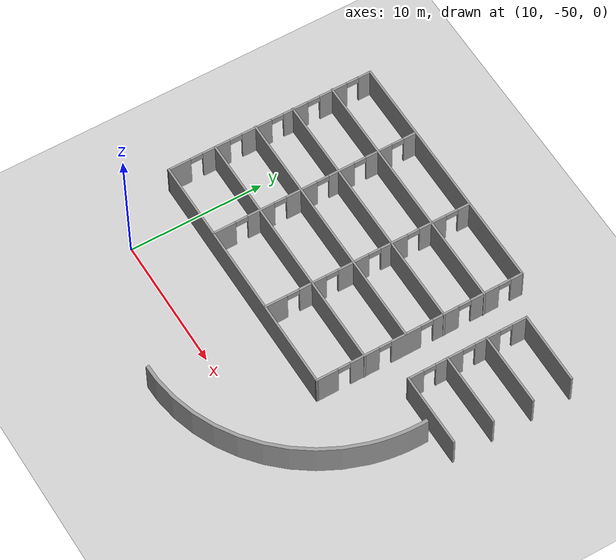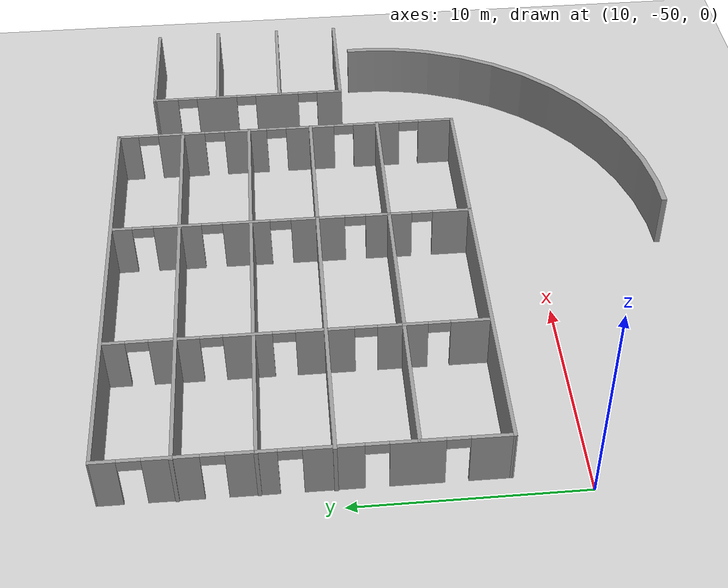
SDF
<sdf version="1.6">
 <world name="default">
  <model name="ground_plane">
   <static>1</static>
   <link name="link">
    <collision name="collision">
     <geometry><plane><normal>0 0 1</normal><size>100 100</size></plane></geometry>
     <surface>
      <contact><collide_bitmask>65535</collide_bitmask></contact>
      <friction><ode><mu>100</mu><mu2>50</mu2></ode></friction>
     </surface>
    </collision>
    <visual name="visual">
     <cast_shadows>0</cast_shadows>
     <geometry><plane><normal>0 0 1</normal><size>100 100</size></plane></geometry>
     <material>
      <script><uri>file://media/materials/scripts/gazebo.material</uri><name>Gazebo/Grey</name></script>
     </material>
    </visual>
   </link>
  </model>
  <model name="5x3_Cubicles_1">
   <pose>18.3518 -38.5604 2.72806 0 -0 0</pose>
   <link name="Wall_0">
    <pose>-9.39351 -0 0 0 -0 -1.57435</pose>
    <visual name="Wall_0_Visual_0">
     <pose>-7.27295 0 1.25 0 -0 0</pose>
     <geometry><box><size>1.03181 0.15 2.5</size></box></geometry>
     <material>
      <script><uri>file://media/materials/scripts/gazebo.material</uri><name>Gazebo/Grey</name></script>
      <ambient>1 1 1 1</ambient>
     </material>
     <meta><layer>0</layer></meta>
    </visual>
    <collision name="Wall_0_Collision_0">
     <geometry><box><size>1.03181 0.15 2.5</size></box></geometry>
     <pose>-7.27295 0 1.25 0 -0 0</pose>
    </collision>
    <visual name="Wall_0_Visual_1">
     <pose>-4.8086 0 1.25 0 -0 0</pose>
     <geometry><box><size>2.09689 0.15 2.5</size></box></geometry>
     <material>
      <script><uri>file://media/materials/scripts/gazebo.material</uri><name>Gazebo/Grey</name></script>
      <ambient>1 1 1 1</ambient>
     </material>
     <meta><layer>0</layer></meta>
    </visual>
    <collision name="Wall_0_Collision_1">
     <geometry><box><size>2.09689 0.15 2.5</size></box></geometry>
     <pose>-4.8086 0 1.25 0 -0 0</pose>
    </collision>
    <visual name="Wall_0_Visual_2">
     <pose>-1.91379 0 1.25 0 -0 0</pose>
     <geometry><box><size>1.89272 0.15 2.5</size></box></geometry>
     <material>
      <script><uri>file://media/materials/scripts/gazebo.material</uri><name>Gazebo/Grey</name></script>
      <ambient>1 1 1 1</ambient>
     </material>
     <meta><layer>0</layer></meta>
    </visual>
    <collision name="Wall_0_Collision_2">
     <geometry><box><size>1.89272 0.15 2.5</size></box></geometry>
     <pose>-1.91379 0 1.25 0 -0 0</pose>
    </collision>
    <visual name="Wall_0_Visual_3">
     <pose>1.06918 0 1.25 0 -0 0</pose>
     <geometry><box><size>2.27323 0.15 2.5</size></box></geometry>
     <material>
      <script><uri>file://media/materials/scripts/gazebo.material</uri><name>Gazebo/Grey</name></script>
      <ambient>1 1 1 1</ambient>
     </material>
     <meta><layer>0</layer></meta>
    </visual>
    <collision name="Wall_0_Collision_3">
     <geometry><box><size>2.27323 0.15 2.5</size></box></geometry>
     <pose>1.06918 0 1.25 0 -0 0</pose>
    </collision>
    <visual name="Wall_0_Visual_4">
     <pose>4.14705 0 1.25 0 -0 0</pose>
     <geometry><box><size>2.0825 0.15 2.5</size></box></geometry>
     <material>
      <script><uri>file://media/materials/scripts/gazebo.material</uri><name>Gazebo/Grey</name></script>
      <ambient>1 1 1 1</ambient>
     </material>
     <meta><layer>0</layer></meta>
    </visual>
    <collision name="Wall_0_Collision_4">
     <geometry><box><size>2.0825 0.15 2.5</size></box></geometry>
     <pose>4.14705 0 1.25 0 -0 0</pose>
    </collision>
    <visual name="Wall_0_Visual_5">
     <pose>6.93858 0 1.25 0 -0 0</pose>
     <geometry><box><size>1.70057 0.15 2.5</size></box></geometry>
     <material>
      <script><uri>file://media/materials/scripts/gazebo.material</uri><name>Gazebo/Grey</name></script>
      <ambient>1 1 1 1</ambient>
     </material>
     <meta><layer>0</layer></meta>
    </visual>
    <collision name="Wall_0_Collision_5">
     <geometry><box><size>1.70057 0.15 2.5</size></box></geometry>
     <pose>6.93858 0 1.25 0 -0 0</pose>
    </collision>
    <visual name="Wall_0_Visual_6">
     <pose>-6.30705 0 2.25 0 -0 0</pose>
     <geometry><box><size>0.9 0.15 0.5</size></box></geometry>
     <material>
      <script><uri>file://media/materials/scripts/gazebo.material</uri><name>Gazebo/Grey</name></script>
      <ambient>1 1 1 1</ambient>
     </material>
     <meta><layer>0</layer></meta>
    </visual>
    <collision name="Wall_0_Collision_6">
     <geometry><box><size>0.9 0.15 0.5</size></box></geometry>
     <pose>-6.30705 0 2.25 0 -0 0</pose>
    </collision>
    <visual name="Wall_0_Visual_7">
     <pose>-3.31016 0 2.25 0 -0 0</pose>
     <geometry><box><size>0.9 0.15 0.5</size></box></geometry>
     <material>
      <script><uri>file://media/materials/scripts/gazebo.material</uri><name>Gazebo/Grey</name></script>
      <ambient>1 1 1 1</ambient>
     </material>
     <meta><layer>0</layer></meta>
    </visual>
    <collision name="Wall_0_Collision_7">
     <geometry><box><size>0.9 0.15 0.5</size></box></geometry>
     <pose>-3.31016 0 2.25 0 -0 0</pose>
    </collision>
    <visual name="Wall_0_Visual_8">
     <pose>-0.517433 0 2.25 0 -0 0</pose>
     <geometry><box><size>0.9 0.15 0.5</size></box></geometry>
     <material>
      <script><uri>file://media/materials/scripts/gazebo.material</uri><name>Gazebo/Grey</name></script>
      <ambient>1 1 1 1</ambient>
     </material>
     <meta><layer>0</layer></meta>
    </visual>
    <collision name="Wall_0_Collision_8">
     <geometry><box><size>0.9 0.15 0.5</size></box></geometry>
     <pose>-0.517433 0 2.25 0 -0 0</pose>
    </collision>
    <visual name="Wall_0_Visual_9">
     <pose>2.6558 0 2.25 0 -0 0</pose>
     <geometry><box><size>0.9 0.15 0.5</size></box></geometry>
     <material>
      <script><uri>file://media/materials/scripts/gazebo.material</uri><name>Gazebo/Grey</name></script>
      <ambient>1 1 1 1</ambient>
     </material>
     <meta><layer>0</layer></meta>
    </visual>
    <collision name="Wall_0_Collision_9">
     <geometry><box><size>0.9 0.15 0.5</size></box></geometry>
     <pose>2.6558 0 2.25 0 -0 0</pose>
    </collision>
    <visual name="Wall_0_Visual_10">
     <pose>5.63829 0 2.25 0 -0 0</pose>
     <geometry><box><size>0.9 0.15 0.5</size></box></geometry>
     <material>
      <script><uri>file://media/materials/scripts/gazebo.material</uri><name>Gazebo/Grey</name></script>
      <ambient>1 1 1 1</ambient>
     </material>
     <meta><layer>0</layer></meta>
    </visual>
    <collision name="Wall_0_Collision_10">
     <geometry><box><size>0.9 0.15 0.5</size></box></geometry>
     <pose>5.63829 0 2.25 0 -0 0</pose>
    </collision>
   </link>
   <link name="Wall_10">
    <collision name="Wall_10_Collision">
     <geometry><box><size>19 0.15 2.5</size></box></geometry>
     <pose>0 0 1.25 0 -0 0</pose>
    </collision>
    <visual name="Wall_10_Visual">
     <pose>0 0 1.25 0 -0 0</pose>
     <geometry><box><size>19 0.15 2.5</size></box></geometry>
     <material>
      <script><uri>file://media/materials/scripts/gazebo.material</uri><name>Gazebo/Grey</name></script>
      <ambient>1 1 1 1</ambient>
     </material>
     <meta><layer>0</layer></meta>
    </visual>
    <pose>-0 1.73972 0 0 -0 0</pose>
   </link>
   <link name="Wall_12">
    <collision name="Wall_12_Collision">
     <geometry><box><size>19 0.15 2.5</size></box></geometry>
     <pose>0 0 1.25 0 -0 0</pose>
    </collision>
    <visual name="Wall_12_Visual">
     <pose>0 0 1.25 0 -0 0</pose>
     <geometry><box><size>19 0.15 2.5</size></box></geometry>
     <material>
      <script><uri>file://media/materials/scripts/gazebo.material</uri><name>Gazebo/Grey</name></script>
      <ambient>1 1 1 1</ambient>
     </material>
     <meta><layer>0</layer></meta>
    </visual>
    <pose>0.002757 4.78648 0 0 -0 0</pose>
   </link>
   <link name="Wall_14">
    <pose>3.03244 -0.038205 0 0 -0 -1.57332</pose>
    <visual name="Wall_14_Visual_0">
     <pose>-7.27661 0 1.25 0 -0 0</pose>
     <geometry><box><size>0.887786 0.15 2.5</size></box></geometry>
     <material>
      <script><uri>file://media/materials/scripts/gazebo.material</uri><name>Gazebo/Grey</name></script>
      <ambient>1 1 1 1</ambient>
     </material>
     <meta><layer>0</layer></meta>
    </visual>
    <collision name="Wall_14_Collision_0">
     <geometry><box><size>0.887786 0.15 2.5</size></box></geometry>
     <pose>-7.27661 0 1.25 0 -0 0</pose>
    </collision>
    <visual name="Wall_14_Visual_1">
     <pose>-4.91212 0 1.25 0 -0 0</pose>
     <geometry><box><size>2.04118 0.15 2.5</size></box></geometry>
     <material>
      <script><uri>file://media/materials/scripts/gazebo.material</uri><name>Gazebo/Grey</name></script>
      <ambient>1 1 1 1</ambient>
     </material>
     <meta><layer>0</layer></meta>
    </visual>
    <collision name="Wall_14_Collision_1">
     <geometry><box><size>2.04118 0.15 2.5</size></box></geometry>
     <pose>-4.91212 0 1.25 0 -0 0</pose>
    </collision>
    <visual name="Wall_14_Visual_2">
     <pose>-1.97726 0 1.25 0 -0 0</pose>
     <geometry><box><size>2.02854 0.15 2.5</size></box></geometry>
     <material>
      <script><uri>file://media/materials/scripts/gazebo.material</uri><name>Gazebo/Grey</name></script>
      <ambient>1 1 1 1</ambient>
     </material>
     <meta><layer>0</layer></meta>
    </visual>
    <collision name="Wall_14_Collision_2">
     <geometry><box><size>2.02854 0.15 2.5</size></box></geometry>
     <pose>-1.97726 0 1.25 0 -0 0</pose>
    </collision>
    <visual name="Wall_14_Visual_3">
     <pose>1.09454 0 1.25 0 -0 0</pose>
     <geometry><box><size>2.31505 0.15 2.5</size></box></geometry>
     <material>
      <script><uri>file://media/materials/scripts/gazebo.material</uri><name>Gazebo/Grey</name></script>
      <ambient>1 1 1 1</ambient>
     </material>
     <meta><layer>0</layer></meta>
    </visual>
    <collision name="Wall_14_Collision_3">
     <geometry><box><size>2.31505 0.15 2.5</size></box></geometry>
     <pose>1.09454 0 1.25 0 -0 0</pose>
    </collision>
    <visual name="Wall_14_Visual_4">
     <pose>4.15071 0 1.25 0 -0 0</pose>
     <geometry><box><size>1.9973 0.15 2.5</size></box></geometry>
     <material>
      <script><uri>file://media/materials/scripts/gazebo.material</uri><name>Gazebo/Grey</name></script>
      <ambient>1 1 1 1</ambient>
     </material>
     <meta><layer>0</layer></meta>
    </visual>
    <collision name="Wall_14_Collision_4">
     <geometry><box><size>1.9973 0.15 2.5</size></box></geometry>
     <pose>4.15071 0 1.25 0 -0 0</pose>
    </collision>
    <visual name="Wall_14_Visual_5">
     <pose>6.88493 0 1.25 0 -0 0</pose>
     <geometry><box><size>1.67114 0.15 2.5</size></box></geometry>
     <material>
      <script><uri>file://media/materials/scripts/gazebo.material</uri><name>Gazebo/Grey</name></script>
      <ambient>1 1 1 1</ambient>
     </material>
     <meta><layer>0</layer></meta>
    </visual>
    <collision name="Wall_14_Collision_5">
     <geometry><box><size>1.67114 0.15 2.5</size></box></geometry>
     <pose>6.88493 0 1.25 0 -0 0</pose>
    </collision>
    <visual name="Wall_14_Visual_6">
     <pose>-6.38271 0 2.25 0 -0 0</pose>
     <geometry><box><size>0.9 0.15 0.5</size></box></geometry>
     <material>
      <script><uri>file://media/materials/scripts/gazebo.material</uri><name>Gazebo/Grey</name></script>
      <ambient>1 1 1 1</ambient>
     </material>
     <meta><layer>0</layer></meta>
    </visual>
    <collision name="Wall_14_Collision_6">
     <geometry><box><size>0.9 0.15 0.5</size></box></geometry>
     <pose>-6.38271 0 2.25 0 -0 0</pose>
    </collision>
    <visual name="Wall_14_Visual_7">
     <pose>-3.44153 0 2.25 0 -0 0</pose>
     <geometry><box><size>0.9 0.15 0.5</size></box></geometry>
     <material>
      <script><uri>file://media/materials/scripts/gazebo.material</uri><name>Gazebo/Grey</name></script>
      <ambient>1 1 1 1</ambient>
     </material>
     <meta><layer>0</layer></meta>
    </visual>
    <collision name="Wall_14_Collision_7">
     <geometry><box><size>0.9 0.15 0.5</size></box></geometry>
     <pose>-3.44153 0 2.25 0 -0 0</pose>
    </collision>
    <visual name="Wall_14_Visual_8">
     <pose>-0.512986 0 2.25 0 -0 0</pose>
     <geometry><box><size>0.9 0.15 0.5</size></box></geometry>
     <material>
      <script><uri>file://media/materials/scripts/gazebo.material</uri><name>Gazebo/Grey</name></script>
      <ambient>1 1 1 1</ambient>
     </material>
     <meta><layer>0</layer></meta>
    </visual>
    <collision name="Wall_14_Collision_8">
     <geometry><box><size>0.9 0.15 0.5</size></box></geometry>
     <pose>-0.512986 0 2.25 0 -0 0</pose>
    </collision>
    <visual name="Wall_14_Visual_9">
     <pose>2.70206 0 2.25 0 -0 0</pose>
     <geometry><box><size>0.9 0.15 0.5</size></box></geometry>
     <material>
      <script><uri>file://media/materials/scripts/gazebo.material</uri><name>Gazebo/Grey</name></script>
      <ambient>1 1 1 1</ambient>
     </material>
     <meta><layer>0</layer></meta>
    </visual>
    <collision name="Wall_14_Collision_9">
     <geometry><box><size>0.9 0.15 0.5</size></box></geometry>
     <pose>2.70206 0 2.25 0 -0 0</pose>
    </collision>
    <visual name="Wall_14_Visual_10">
     <pose>5.59936 0 2.25 0 -0 0</pose>
     <geometry><box><size>0.9 0.15 0.5</size></box></geometry>
     <material>
      <script><uri>file://media/materials/scripts/gazebo.material</uri><name>Gazebo/Grey</name></script>
      <ambient>1 1 1 1</ambient>
     </material>
     <meta><layer>0</layer></meta>
    </visual>
    <collision name="Wall_14_Collision_10">
     <geometry><box><size>0.9 0.15 0.5</size></box></geometry>
     <pose>5.59936 0 2.25 0 -0 0</pose>
    </collision>
   </link>
   <link name="Wall_16">
    <pose>-3.57321 -0.011645 0 0 -0 -1.5708</pose>
    <visual name="Wall_16_Visual_0">
     <pose>-7.25015 0 1.25 0 -0 0</pose>
     <geometry><box><size>0.999697 0.15 2.5</size></box></geometry>
     <material>
      <script><uri>file://media/materials/scripts/gazebo.material</uri><name>Gazebo/Grey</name></script>
      <ambient>1 1 1 1</ambient>
     </material>
     <meta><layer>0</layer></meta>
    </visual>
    <collision name="Wall_16_Collision_0">
     <geometry><box><size>0.999697 0.15 2.5</size></box></geometry>
     <pose>-7.25015 0 1.25 0 -0 0</pose>
    </collision>
    <visual name="Wall_16_Visual_1">
     <pose>-4.84832 0 1.25 0 -0 0</pose>
     <geometry><box><size>2.00397 0.15 2.5</size></box></geometry>
     <material>
      <script><uri>file://media/materials/scripts/gazebo.material</uri><name>Gazebo/Grey</name></script>
      <ambient>1 1 1 1</ambient>
     </material>
     <meta><layer>0</layer></meta>
    </visual>
    <collision name="Wall_16_Collision_1">
     <geometry><box><size>2.00397 0.15 2.5</size></box></geometry>
     <pose>-4.84832 0 1.25 0 -0 0</pose>
    </collision>
    <visual name="Wall_16_Visual_2">
     <pose>-1.97337 0 1.25 0 -0 0</pose>
     <geometry><box><size>1.94594 0.15 2.5</size></box></geometry>
     <material>
      <script><uri>file://media/materials/scripts/gazebo.material</uri><name>Gazebo/Grey</name></script>
      <ambient>1 1 1 1</ambient>
     </material>
     <meta><layer>0</layer></meta>
    </visual>
    <collision name="Wall_16_Collision_2">
     <geometry><box><size>1.94594 0.15 2.5</size></box></geometry>
     <pose>-1.97337 0 1.25 0 -0 0</pose>
    </collision>
    <visual name="Wall_16_Visual_3">
     <pose>1.06765 0 1.25 0 -0 0</pose>
     <geometry><box><size>2.3361 0.15 2.5</size></box></geometry>
     <material>
      <script><uri>file://media/materials/scripts/gazebo.material</uri><name>Gazebo/Grey</name></script>
      <ambient>1 1 1 1</ambient>
     </material>
     <meta><layer>0</layer></meta>
    </visual>
    <collision name="Wall_16_Collision_3">
     <geometry><box><size>2.3361 0.15 2.5</size></box></geometry>
     <pose>1.06765 0 1.25 0 -0 0</pose>
    </collision>
    <visual name="Wall_16_Visual_4">
     <pose>4.14512 0 1.25 0 -0 0</pose>
     <geometry><box><size>2.01884 0.15 2.5</size></box></geometry>
     <material>
      <script><uri>file://media/materials/scripts/gazebo.material</uri><name>Gazebo/Grey</name></script>
      <ambient>1 1 1 1</ambient>
     </material>
     <meta><layer>0</layer></meta>
    </visual>
    <collision name="Wall_16_Collision_4">
     <geometry><box><size>2.01884 0.15 2.5</size></box></geometry>
     <pose>4.14512 0 1.25 0 -0 0</pose>
    </collision>
    <visual name="Wall_16_Visual_5">
     <pose>6.90227 0 1.25 0 -0 0</pose>
     <geometry><box><size>1.69546 0.15 2.5</size></box></geometry>
     <material>
      <script><uri>file://media/materials/scripts/gazebo.material</uri><name>Gazebo/Grey</name></script>
      <ambient>1 1 1 1</ambient>
     </material>
     <meta><layer>0</layer></meta>
    </visual>
    <collision name="Wall_16_Collision_5">
     <geometry><box><size>1.69546 0.15 2.5</size></box></geometry>
     <pose>6.90227 0 1.25 0 -0 0</pose>
    </collision>
    <visual name="Wall_16_Visual_6">
     <pose>-6.3003 0 2.25 0 -0 0</pose>
     <geometry><box><size>0.9 0.15 0.5</size></box></geometry>
     <material>
      <script><uri>file://media/materials/scripts/gazebo.material</uri><name>Gazebo/Grey</name></script>
      <ambient>1 1 1 1</ambient>
     </material>
     <meta><layer>0</layer></meta>
    </visual>
    <collision name="Wall_16_Collision_6">
     <geometry><box><size>0.9 0.15 0.5</size></box></geometry>
     <pose>-6.3003 0 2.25 0 -0 0</pose>
    </collision>
    <visual name="Wall_16_Visual_7">
     <pose>-3.39634 0 2.25 0 -0 0</pose>
     <geometry><box><size>0.9 0.15 0.5</size></box></geometry>
     <material>
      <script><uri>file://media/materials/scripts/gazebo.material</uri><name>Gazebo/Grey</name></script>
      <ambient>1 1 1 1</ambient>
     </material>
     <meta><layer>0</layer></meta>
    </visual>
    <collision name="Wall_16_Collision_7">
     <geometry><box><size>0.9 0.15 0.5</size></box></geometry>
     <pose>-3.39634 0 2.25 0 -0 0</pose>
    </collision>
    <visual name="Wall_16_Visual_8">
     <pose>-0.5504 0 2.25 0 -0 0</pose>
     <geometry><box><size>0.9 0.15 0.5</size></box></geometry>
     <material>
      <script><uri>file://media/materials/scripts/gazebo.material</uri><name>Gazebo/Grey</name></script>
      <ambient>1 1 1 1</ambient>
     </material>
     <meta><layer>0</layer></meta>
    </visual>
    <collision name="Wall_16_Collision_8">
     <geometry><box><size>0.9 0.15 0.5</size></box></geometry>
     <pose>-0.5504 0 2.25 0 -0 0</pose>
    </collision>
    <visual name="Wall_16_Visual_9">
     <pose>2.6857 0 2.25 0 -0 0</pose>
     <geometry><box><size>0.9 0.15 0.5</size></box></geometry>
     <material>
      <script><uri>file://media/materials/scripts/gazebo.material</uri><name>Gazebo/Grey</name></script>
      <ambient>1 1 1 1</ambient>
     </material>
     <meta><layer>0</layer></meta>
    </visual>
    <collision name="Wall_16_Collision_9">
     <geometry><box><size>0.9 0.15 0.5</size></box></geometry>
     <pose>2.6857 0 2.25 0 -0 0</pose>
    </collision>
    <visual name="Wall_16_Visual_10">
     <pose>5.60454 0 2.25 0 -0 0</pose>
     <geometry><box><size>0.9 0.15 0.5</size></box></geometry>
     <material>
      <script><uri>file://media/materials/scripts/gazebo.material</uri><name>Gazebo/Grey</name></script>
      <ambient>1 1 1 1</ambient>
     </material>
     <meta><layer>0</layer></meta>
    </visual>
    <collision name="Wall_16_Collision_10">
     <geometry><box><size>0.9 0.15 0.5</size></box></geometry>
     <pose>5.60454 0 2.25 0 -0 0</pose>
    </collision>
   </link>
   <link name="Wall_2">
    <collision name="Wall_2_Collision">
     <geometry><box><size>19 0.15 2.5</size></box></geometry>
     <pose>0 0 1.25 0 -0 0</pose>
    </collision>
    <visual name="Wall_2_Visual">
     <pose>0 0 1.25 0 -0 0</pose>
     <geometry><box><size>19 0.15 2.5</size></box></geometry>
     <material>
      <script><uri>file://media/materials/scripts/gazebo.material</uri><name>Gazebo/Grey</name></script>
      <ambient>1 1 1 1</ambient>
     </material>
     <meta><layer>0</layer></meta>
    </visual>
    <pose>0.004043 -7.71378 0 0 -0 0</pose>
   </link>
   <link name="Wall_3">
    <pose>9.40486 -0.007207 0 0 -0 1.57394</pose>
    <visual name="Wall_3_Visual_0">
     <pose>-6.96276 0 1.25 0 -0 0</pose>
     <geometry><box><size>1.63776 0.15 2.5</size></box></geometry>
     <material>
      <script><uri>file://media/materials/scripts/gazebo.material</uri><name>Gazebo/Grey</name></script>
      <ambient>1 1 1 1</ambient>
     </material>
     <meta><layer>0</layer></meta>
    </visual>
    <collision name="Wall_3_Collision_0">
     <geometry><box><size>1.63776 0.15 2.5</size></box></geometry>
     <pose>-6.96276 0 1.25 0 -0 0</pose>
    </collision>
    <visual name="Wall_3_Visual_1">
     <pose>-4.17068 0 1.25 0 -0 0</pose>
     <geometry><box><size>2.14639 0.15 2.5</size></box></geometry>
     <material>
      <script><uri>file://media/materials/scripts/gazebo.material</uri><name>Gazebo/Grey</name></script>
      <ambient>1 1 1 1</ambient>
     </material>
     <meta><layer>0</layer></meta>
    </visual>
    <collision name="Wall_3_Collision_1">
     <geometry><box><size>2.14639 0.15 2.5</size></box></geometry>
     <pose>-4.17068 0 1.25 0 -0 0</pose>
    </collision>
    <visual name="Wall_3_Visual_2">
     <pose>-1.08256 0 1.25 0 -0 0</pose>
     <geometry><box><size>2.22987 0.15 2.5</size></box></geometry>
     <material>
      <script><uri>file://media/materials/scripts/gazebo.material</uri><name>Gazebo/Grey</name></script>
      <ambient>1 1 1 1</ambient>
     </material>
     <meta><layer>0</layer></meta>
    </visual>
    <collision name="Wall_3_Collision_2">
     <geometry><box><size>2.22987 0.15 2.5</size></box></geometry>
     <pose>-1.08256 0 1.25 0 -0 0</pose>
    </collision>
    <visual name="Wall_3_Visual_3">
     <pose>1.90922 0 1.25 0 -0 0</pose>
     <geometry><box><size>1.95369 0.15 2.5</size></box></geometry>
     <material>
      <script><uri>file://media/materials/scripts/gazebo.material</uri><name>Gazebo/Grey</name></script>
      <ambient>1 1 1 1</ambient>
     </material>
     <meta><layer>0</layer></meta>
    </visual>
    <collision name="Wall_3_Collision_3">
     <geometry><box><size>1.95369 0.15 2.5</size></box></geometry>
     <pose>1.90922 0 1.25 0 -0 0</pose>
    </collision>
    <visual name="Wall_3_Visual_4">
     <pose>4.85258 0 1.25 0 -0 0</pose>
     <geometry><box><size>2.13302 0.15 2.5</size></box></geometry>
     <material>
      <script><uri>file://media/materials/scripts/gazebo.material</uri><name>Gazebo/Grey</name></script>
      <ambient>1 1 1 1</ambient>
     </material>
     <meta><layer>0</layer></meta>
    </visual>
    <collision name="Wall_3_Collision_4">
     <geometry><box><size>2.13302 0.15 2.5</size></box></geometry>
     <pose>4.85258 0 1.25 0 -0 0</pose>
    </collision>
    <visual name="Wall_3_Visual_5">
     <pose>7.30037 0 1.25 0 -0 0</pose>
     <geometry><box><size>0.962557 0.15 2.5</size></box></geometry>
     <material>
      <script><uri>file://media/materials/scripts/gazebo.material</uri><name>Gazebo/Grey</name></script>
      <ambient>1 1 1 1</ambient>
     </material>
     <meta><layer>0</layer></meta>
    </visual>
    <collision name="Wall_3_Collision_5">
     <geometry><box><size>0.962557 0.15 2.5</size></box></geometry>
     <pose>7.30037 0 1.25 0 -0 0</pose>
    </collision>
    <visual name="Wall_3_Visual_6">
     <pose>-5.69388 0 2.25 0 -0 0</pose>
     <geometry><box><size>0.9 0.15 0.5</size></box></geometry>
     <material>
      <script><uri>file://media/materials/scripts/gazebo.material</uri><name>Gazebo/Grey</name></script>
      <ambient>1 1 1 1</ambient>
     </material>
     <meta><layer>0</layer></meta>
    </visual>
    <collision name="Wall_3_Collision_6">
     <geometry><box><size>0.9 0.15 0.5</size></box></geometry>
     <pose>-5.69388 0 2.25 0 -0 0</pose>
    </collision>
    <visual name="Wall_3_Visual_7">
     <pose>-2.64749 0 2.25 0 -0 0</pose>
     <geometry><box><size>0.9 0.15 0.5</size></box></geometry>
     <material>
      <script><uri>file://media/materials/scripts/gazebo.material</uri><name>Gazebo/Grey</name></script>
      <ambient>1 1 1 1</ambient>
     </material>
     <meta><layer>0</layer></meta>
    </visual>
    <collision name="Wall_3_Collision_7">
     <geometry><box><size>0.9 0.15 0.5</size></box></geometry>
     <pose>-2.64749 0 2.25 0 -0 0</pose>
    </collision>
    <visual name="Wall_3_Visual_8">
     <pose>0.482376 0 2.25 0 -0 0</pose>
     <geometry><box><size>0.9 0.15 0.5</size></box></geometry>
     <material>
      <script><uri>file://media/materials/scripts/gazebo.material</uri><name>Gazebo/Grey</name></script>
      <ambient>1 1 1 1</ambient>
     </material>
     <meta><layer>0</layer></meta>
    </visual>
    <collision name="Wall_3_Collision_8">
     <geometry><box><size>0.9 0.15 0.5</size></box></geometry>
     <pose>0.482376 0 2.25 0 -0 0</pose>
    </collision>
    <visual name="Wall_3_Visual_9">
     <pose>3.33607 0 2.25 0 -0 0</pose>
     <geometry><box><size>0.9 0.15 0.5</size></box></geometry>
     <material>
      <script><uri>file://media/materials/scripts/gazebo.material</uri><name>Gazebo/Grey</name></script>
      <ambient>1 1 1 1</ambient>
     </material>
     <meta><layer>0</layer></meta>
    </visual>
    <collision name="Wall_3_Collision_9">
     <geometry><box><size>0.9 0.15 0.5</size></box></geometry>
     <pose>3.33607 0 2.25 0 -0 0</pose>
    </collision>
    <visual name="Wall_3_Visual_10">
     <pose>6.36909 0 2.25 0 -0 0</pose>
     <geometry><box><size>0.9 0.15 0.5</size></box></geometry>
     <material>
      <script><uri>file://media/materials/scripts/gazebo.material</uri><name>Gazebo/Grey</name></script>
      <ambient>1 1 1 1</ambient>
     </material>
     <meta><layer>0</layer></meta>
    </visual>
    <collision name="Wall_3_Collision_10">
     <geometry><box><size>0.9 0.15 0.5</size></box></geometry>
     <pose>6.36909 0 2.25 0 -0 0</pose>
    </collision>
   </link>
   <link name="Wall_4">
    <collision name="Wall_4_Collision">
     <geometry><box><size>18.8967 0.15 2.5</size></box></geometry>
     <pose>0 0 1.25 0 -0 0</pose>
    </collision>
    <visual name="Wall_4_Visual">
     <pose>0 0 1.25 0 -0 0</pose>
     <geometry><box><size>18.8967 0.15 2.5</size></box></geometry>
     <material>
      <script><uri>file://media/materials/scripts/gazebo.material</uri><name>Gazebo/Grey</name></script>
      <ambient>1 1 1 1</ambient>
     </material>
     <meta><layer>0</layer></meta>
    </visual>
    <pose>0.0073 7.70657 0 0 -0 3.14082</pose>
   </link>
   <link name="Wall_6">
    <collision name="Wall_6_Collision">
     <geometry><box><size>19 0.15 2.5</size></box></geometry>
     <pose>0 0 1.25 0 -0 0</pose>
    </collision>
    <visual name="Wall_6_Visual">
     <pose>0 0 1.25 0 -0 0</pose>
     <geometry><box><size>19 0.15 2.5</size></box></geometry>
     <material>
      <script><uri>file://media/materials/scripts/gazebo.material</uri><name>Gazebo/Grey</name></script>
      <ambient>1 1 1 1</ambient>
     </material>
     <meta><layer>0</layer></meta>
    </visual>
    <pose>0.024186 -4.2101 0 0 -0 0</pose>
   </link>
   <link name="Wall_8">
    <collision name="Wall_8_Collision">
     <geometry><box><size>19 0.15 2.5</size></box></geometry>
     <pose>0 0 1.25 0 -0 0</pose>
    </collision>
    <visual name="Wall_8_Visual">
     <pose>0 0 1.25 0 -0 0</pose>
     <geometry><box><size>19 0.15 2.5</size></box></geometry>
     <material>
      <script><uri>file://media/materials/scripts/gazebo.material</uri><name>Gazebo/Grey</name></script>
      <ambient>1 1 1 1</ambient>
     </material>
     <meta><layer>0</layer></meta>
    </visual>
    <pose>-0.024187 -1.11426 0 0 -0 0</pose>
   </link>
   <static>1</static>
  </model>
  <model name="3_cubicles">
   <pose>33.2935 -36.8007 2.60521 0 -0 0</pose>
   <link name="Wall_31">
    <collision name="Wall_31_Collision">
     <geometry><box><size>5.43792 0.15 2.5</size></box></geometry>
     <pose>0 0 1.25 0 -0 0</pose>
    </collision>
    <visual name="Wall_31_Visual">
     <pose>0 0 1.25 0 -0 0</pose>
     <geometry><box><size>5.43792 0.15 2.5</size></box></geometry>
     <material>
      <script><uri>file://media/materials/scripts/gazebo.material</uri><name>Gazebo/Grey</name></script>
      <ambient>1 1 1 1</ambient>
     </material>
     <meta><layer>0</layer></meta>
    </visual>
    <pose>-0.043218 4.39971 0 0 -0 3.13216</pose>
   </link>
   <link name="Wall_32">
    <pose>-2.68718 -0.000351 0 0 -0 -1.5708</pose>
    <visual name="Wall_32_Visual_0">
     <pose>-3.91427 0 1.25 0 -0 0</pose>
     <geometry><box><size>1.17147 0.15 2.5</size></box></geometry>
     <material>
      <script><uri>file://media/materials/scripts/gazebo.material</uri><name>Gazebo/Grey</name></script>
      <ambient>1 1 1 1</ambient>
     </material>
     <meta><layer>0</layer></meta>
    </visual>
    <collision name="Wall_32_Collision_0">
     <geometry><box><size>1.17147 0.15 2.5</size></box></geometry>
     <pose>-3.91427 0 1.25 0 -0 0</pose>
    </collision>
    <visual name="Wall_32_Visual_1">
     <pose>-1.48172 0 1.25 0 -0 0</pose>
     <geometry><box><size>1.89362 0.15 2.5</size></box></geometry>
     <material>
      <script><uri>file://media/materials/scripts/gazebo.material</uri><name>Gazebo/Grey</name></script>
      <ambient>1 1 1 1</ambient>
     </material>
     <meta><layer>0</layer></meta>
    </visual>
    <collision name="Wall_32_Collision_1">
     <geometry><box><size>1.89362 0.15 2.5</size></box></geometry>
     <pose>-1.48172 0 1.25 0 -0 0</pose>
    </collision>
    <visual name="Wall_32_Visual_2">
     <pose>1.38672 0 1.25 0 -0 0</pose>
     <geometry><box><size>2.04328 0.15 2.5</size></box></geometry>
     <material>
      <script><uri>file://media/materials/scripts/gazebo.material</uri><name>Gazebo/Grey</name></script>
      <ambient>1 1 1 1</ambient>
     </material>
     <meta><layer>0</layer></meta>
    </visual>
    <collision name="Wall_32_Collision_2">
     <geometry><box><size>2.04328 0.15 2.5</size></box></geometry>
     <pose>1.38672 0 1.25 0 -0 0</pose>
    </collision>
    <visual name="Wall_32_Visual_3">
     <pose>3.90418 0 1.25 0 -0 0</pose>
     <geometry><box><size>1.19164 0.15 2.5</size></box></geometry>
     <material>
      <script><uri>file://media/materials/scripts/gazebo.material</uri><name>Gazebo/Grey</name></script>
      <ambient>1 1 1 1</ambient>
     </material>
     <meta><layer>0</layer></meta>
    </visual>
    <collision name="Wall_32_Collision_3">
     <geometry><box><size>1.19164 0.15 2.5</size></box></geometry>
     <pose>3.90418 0 1.25 0 -0 0</pose>
    </collision>
    <visual name="Wall_32_Visual_4">
     <pose>-2.87853 0 2.25 0 -0 0</pose>
     <geometry><box><size>0.9 0.15 0.5</size></box></geometry>
     <material>
      <script><uri>file://media/materials/scripts/gazebo.material</uri><name>Gazebo/Grey</name></script>
      <ambient>1 1 1 1</ambient>
     </material>
     <meta><layer>0</layer></meta>
    </visual>
    <collision name="Wall_32_Collision_4">
     <geometry><box><size>0.9 0.15 0.5</size></box></geometry>
     <pose>-2.87853 0 2.25 0 -0 0</pose>
    </collision>
    <visual name="Wall_32_Visual_5">
     <pose>-0.084914 0 2.25 0 -0 0</pose>
     <geometry><box><size>0.9 0.15 0.5</size></box></geometry>
     <material>
      <script><uri>file://media/materials/scripts/gazebo.material</uri><name>Gazebo/Grey</name></script>
      <ambient>1 1 1 1</ambient>
     </material>
     <meta><layer>0</layer></meta>
    </visual>
    <collision name="Wall_32_Collision_5">
     <geometry><box><size>0.9 0.15 0.5</size></box></geometry>
     <pose>-0.084914 0 2.25 0 -0 0</pose>
    </collision>
    <visual name="Wall_32_Visual_6">
     <pose>2.85836 0 2.25 0 -0 0</pose>
     <geometry><box><size>0.9 0.15 0.5</size></box></geometry>
     <material>
      <script><uri>file://media/materials/scripts/gazebo.material</uri><name>Gazebo/Grey</name></script>
      <ambient>1 1 1 1</ambient>
     </material>
     <meta><layer>0</layer></meta>
    </visual>
    <collision name="Wall_32_Collision_6">
     <geometry><box><size>0.9 0.15 0.5</size></box></geometry>
     <pose>2.85836 0 2.25 0 -0 0</pose>
    </collision>
   </link>
   <link name="Wall_33">
    <collision name="Wall_33_Collision">
     <geometry><box><size>5.5 0.15 2.5</size></box></geometry>
     <pose>0 0 1.25 0 -0 0</pose>
    </collision>
    <visual name="Wall_33_Visual">
     <pose>0 0 1.25 0 -0 0</pose>
     <geometry><box><size>5.5 0.15 2.5</size></box></geometry>
     <material>
      <script><uri>file://media/materials/scripts/gazebo.material</uri><name>Gazebo/Grey</name></script>
      <ambient>1 1 1 1</ambient>
     </material>
     <meta><layer>0</layer></meta>
    </visual>
    <pose>-0.012177 -4.42535 0 0 -0 0</pose>
   </link>
   <link name="Wall_35">
    <collision name="Wall_35_Collision">
     <geometry><box><size>5.5 0.15 2.5</size></box></geometry>
     <pose>0 0 1.25 0 -0 0</pose>
    </collision>
    <visual name="Wall_35_Visual">
     <pose>0 0 1.25 0 -0 0</pose>
     <geometry><box><size>5.5 0.15 2.5</size></box></geometry>
     <material>
      <script><uri>file://media/materials/scripts/gazebo.material</uri><name>Gazebo/Grey</name></script>
      <ambient>1 1 1 1</ambient>
     </material>
     <meta><layer>0</layer></meta>
    </visual>
    <pose>0.012765 1.43149 0 0 -0 0</pose>
   </link>
   <link name="Wall_37">
    <collision name="Wall_37_Collision">
     <geometry><box><size>5.5 0.15 2.5</size></box></geometry>
     <pose>0 0 1.25 0 -0 0</pose>
    </collision>
    <visual name="Wall_37_Visual">
     <pose>0 0 1.25 0 -0 0</pose>
     <geometry><box><size>5.5 0.15 2.5</size></box></geometry>
     <material>
      <script><uri>file://media/materials/scripts/gazebo.material</uri><name>Gazebo/Grey</name></script>
      <ambient>1 1 1 1</ambient>
     </material>
     <meta><layer>0</layer></meta>
    </visual>
    <pose>-0.012177 -1.51179 0 0 -0 0</pose>
   </link>
   <static>1</static>
  </model>
  <model name="Curved_wall_1.25m_clone_clone">
   <link name="link_0">
    <inertial>
     <mass>1</mass>
     <inertia>
      <ixx>0.166667</ixx>
      <ixy>0</ixy>
      <ixz>0</ixz>
      <iyy>0.166667</iyy>
      <iyz>0</iyz>
      <izz>0.166667</izz>
     </inertia>
    </inertial>
    <pose>-4.4e-05 -6e-06 0 0 -0 0</pose>
    <visual name="visual">
     <geometry><mesh><uri>meshes/curved wall.dae</uri><scale>1 1 1</scale></mesh></geometry>
     <material>
      <lighting>1</lighting>
      <script><uri>file://media/materials/scripts/gazebo.material</uri><name>Gazebo/Grey</name></script>
      <shader type="pixel"/>
     </material>
    </visual>
    <collision name="collision">
     <geometry><mesh><uri>meshes/curved wall.dae</uri><scale>1 1 1</scale></mesh></geometry>
     <surface>
      <friction>
       <ode><mu>1</mu><mu2>1</mu2><fdir1>0 0 0</fdir1><slip1>0</slip1><slip2>0</slip2></ode>
       <torsional>
        <coefficient>1</coefficient>
        <patch_radius>0</patch_radius>
        <surface_radius>0</surface_radius>
        <use_patch_radius>1</use_patch_radius>
        <ode><slip>0</slip></ode>
       </torsional>
      </friction>
      <bounce><restitution_coefficient>0</restitution_coefficient><threshold>1e+06</threshold></bounce>
      <contact>
       <collide_without_contact>0</collide_without_contact>
       <collide_without_contact_bitmask>1</collide_without_contact_bitmask>
       <collide_bitmask>1</collide_bitmask>
       <ode>
        <soft_cfm>0</soft_cfm>
        <soft_erp>0.2</soft_erp>
        <kp>1e+13</kp>
        <kd>1</kd>
        <max_vel>0.01</max_vel>
        <min_depth>0</min_depth>
       </ode>
       <bullet>
        <split_impulse>1</split_impulse>
        <split_impulse_penetration_threshold>-0.01</split_impulse_penetration_threshold>
        <soft_cfm>0</soft_cfm>
        <soft_erp>0.2</soft_erp>
        <kp>1e+13</kp>
        <kd>1</kd>
       </bullet>
      </contact>
     </surface>
    </collision>
   </link>
   <static>1</static>
   <pose>29.4375 -50.0798 3.91892 1e-06 -1e-06 -1.53763</pose>
  </model>
 </world>
</sdf>
